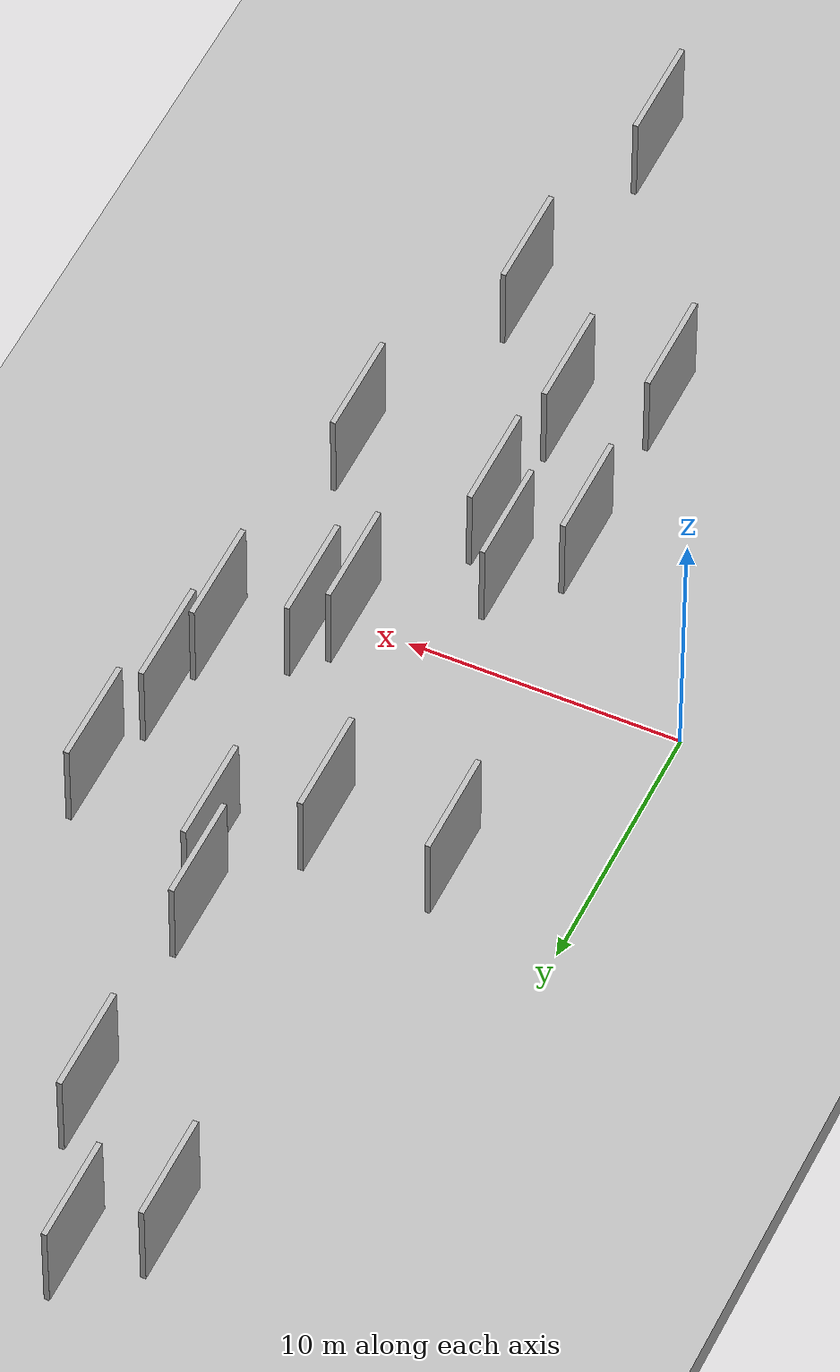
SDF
<?xml version="1.0" encoding="utf-8"?>

<sdf version="1.6">

   <world name="default">

      <gui fullscreen="0">

         <camera name="user_camera">

            <pose>-15 0 4.57585 0 0 0</pose>

            <view_controller>orbit</view_controller>

         </camera>

      </gui>

      <scene>

         <sky>

           <clouds>

             <speed>12</speed>

           </clouds>

         </sky>

         <ambient>0.4 0.4 0.4 1</ambient>

         <background>0.7 0.7 0.7 1</background>

         <shadows>1</shadows>

      </scene>

      <gravity>0 0 -9.8066</gravity>

      <magnetic_field>6e-06 2.3e-05 -4.2e-05</magnetic_field>

      <physics default="0" name="default_physics" type="ode">

         <ode>

            <solver>

               <type>quick</type>

               <iters>10</iters>

               <sor>1.0</sor>

               <use_dynamic_moi_rescaling>0</use_dynamic_moi_rescaling>

            </solver>

            <constraints>

               <cfm>0</cfm>

               <erp>0.2</erp>

               <contact_max_correcting_vel>100</contact_max_correcting_vel>

               <contact_surface_layer>0.001</contact_surface_layer>

            </constraints>

         </ode>

         <max_step_size>0.004</max_step_size>

         <real_time_factor>1</real_time_factor>

         <real_time_update_rate>250</real_time_update_rate>

      </physics>

      <light name="sun" type="directional">

         <cast_shadows>1</cast_shadows>

         <pose>0 0 10 0 0 0</pose>

         <diffuse>0.8 0.8 0.8 1</diffuse>

         <specular>0.2 0.2 0.2 1</specular>

         <attenuation>

            <range>1000</range>

            <constant>0.9</constant>

            <linear>0.01</linear>

            <quadratic>0.001</quadratic>

         </attenuation>

         <direction>-0.5 0.1 -0.9</direction>

      </light>

      <include>

         <name>ground_plane_1</name>

         <uri>model://HANNAS_ground_plane</uri>

         <pose>0 0 0  0 0 0</pose>

      </include>

      <include>

         <name>ground_plane_2</name>

         <uri>model://HANNAS_ground_plane</uri>

         <pose>100 0 0  0 0 0</pose>

      </include>

      <model name="HANNAS_wall_1">

         <static>1</static>

         <pose frame="">9.1122 -10.9513 0.0 0.000000 0.000000 1.570796</pose>

         <link name="link">

            <pose frame="">0 0 2.00 0 0 0</pose>

            <collision name="collision">

               <geometry>

                  <box>

                     <size>4.00 0.2 4.00</size>

                  </box>

               </geometry>

               <max_contacts>10</max_contacts>

               <surface>

                  <contact>

                     <ode/>

                  </contact>

                  <bounce/>

                  <friction>

                     <torsional>

                        <ode/>

                     </torsional>

                     <ode/>

                  </friction>

               </surface>

            </collision>

            <visual name="visual">

               <cast_shadows>0</cast_shadows>

               <geometry>

                  <box>

                     <size>4.00 0.2 4.00</size>

                  </box>

               </geometry>

               <material>

                  <script>

                     <uri>model://HANNAS_wall/materials/scripts</uri>

                     <uri>model://HANNAS_wall/materials/textures</uri>

                     <name>vrc/HANNAS_wall</name>

                  </script>

               </material>

            </visual>

            <self_collide>0</self_collide>

            <enable_wind>0</enable_wind>

            <kinematic>0</kinematic>

         </link>

      </model>

      <model name="HANNAS_wall_2">

         <static>1</static>

         <pose frame="">6.4511 25.8062 0.0 0.000000 0.000000 1.570796</pose>

         <link name="link">

            <pose frame="">0 0 2.00 0 0 0</pose>

            <collision name="collision">

               <geometry>

                  <box>

                     <size>4.00 0.2 4.00</size>

                  </box>

               </geometry>

               <max_contacts>10</max_contacts>

               <surface>

                  <contact>

                     <ode/>

                  </contact>

                  <bounce/>

                  <friction>

                     <torsional>

                        <ode/>

                     </torsional>

                     <ode/>

                  </friction>

               </surface>

            </collision>

            <visual name="visual">

               <cast_shadows>0</cast_shadows>

               <geometry>

                  <box>

                     <size>4.00 0.2 4.00</size>

                  </box>

               </geometry>

               <material>

                  <script>

                     <uri>model://HANNAS_wall/materials/scripts</uri>

                     <uri>model://HANNAS_wall/materials/textures</uri>

                     <name>vrc/HANNAS_wall</name>

                  </script>

               </material>

            </visual>

            <self_collide>0</self_collide>

            <enable_wind>0</enable_wind>

            <kinematic>0</kinematic>

         </link>

      </model>

      <model name="HANNAS_wall_3">

         <static>1</static>

         <pose frame="">6.1203 -5.8459 0.0 0.000000 0.000000 1.570796</pose>

         <link name="link">

            <pose frame="">0 0 2.00 0 0 0</pose>

            <collision name="collision">

               <geometry>

                  <box>

                     <size>4.00 0.2 4.00</size>

                  </box>

               </geometry>

               <max_contacts>10</max_contacts>

               <surface>

                  <contact>

                     <ode/>

                  </contact>

                  <bounce/>

                  <friction>

                     <torsional>

                        <ode/>

                     </torsional>

                     <ode/>

                  </friction>

               </surface>

            </collision>

            <visual name="visual">

               <cast_shadows>0</cast_shadows>

               <geometry>

                  <box>

                     <size>4.00 0.2 4.00</size>

                  </box>

               </geometry>

               <material>

                  <script>

                     <uri>model://HANNAS_wall/materials/scripts</uri>

                     <uri>model://HANNAS_wall/materials/textures</uri>

                     <name>vrc/HANNAS_wall</name>

                  </script>

               </material>

            </visual>

            <self_collide>0</self_collide>

            <enable_wind>0</enable_wind>

            <kinematic>0</kinematic>

         </link>

      </model>

      <model name="HANNAS_wall_4">

         <static>1</static>

         <pose frame="">6.1433 -12.8786 0.0 0.000000 0.000000 1.570796</pose>

         <link name="link">

            <pose frame="">0 0 2.00 0 0 0</pose>

            <collision name="collision">

               <geometry>

                  <box>

                     <size>4.00 0.2 4.00</size>

                  </box>

               </geometry>

               <max_contacts>10</max_contacts>

               <surface>

                  <contact>

                     <ode/>

                  </contact>

                  <bounce/>

                  <friction>

                     <torsional>

                        <ode/>

                     </torsional>

                     <ode/>

                  </friction>

               </surface>

            </collision>

            <visual name="visual">

               <cast_shadows>0</cast_shadows>

               <geometry>

                  <box>

                     <size>4.00 0.2 4.00</size>

                  </box>

               </geometry>

               <material>

                  <script>

                     <uri>model://HANNAS_wall/materials/scripts</uri>

                     <uri>model://HANNAS_wall/materials/textures</uri>

                     <name>vrc/HANNAS_wall</name>

                  </script>

               </material>

            </visual>

            <self_collide>0</self_collide>

            <enable_wind>0</enable_wind>

            <kinematic>0</kinematic>

         </link>

      </model>

      <model name="HANNAS_wall_5">

         <static>1</static>

         <pose frame="">8.8582 27.8732 0.0 0.000000 0.000000 1.570796</pose>

         <link name="link">

            <pose frame="">0 0 2.00 0 0 0</pose>

            <collision name="collision">

               <geometry>

                  <box>

                     <size>4.00 0.2 4.00</size>

                  </box>

               </geometry>

               <max_contacts>10</max_contacts>

               <surface>

                  <contact>

                     <ode/>

                  </contact>

                  <bounce/>

                  <friction>

                     <torsional>

                        <ode/>

                     </torsional>

                     <ode/>

                  </friction>

               </surface>

            </collision>

            <visual name="visual">

               <cast_shadows>0</cast_shadows>

               <geometry>

                  <box>

                     <size>4.00 0.2 4.00</size>

                  </box>

               </geometry>

               <material>

                  <script>

                     <uri>model://HANNAS_wall/materials/scripts</uri>

                     <uri>model://HANNAS_wall/materials/textures</uri>

                     <name>vrc/HANNAS_wall</name>

                  </script>

               </material>

            </visual>

            <self_collide>0</self_collide>

            <enable_wind>0</enable_wind>

            <kinematic>0</kinematic>

         </link>

      </model>

      <model name="HANNAS_wall_6">

         <static>1</static>

         <pose frame="">15.7544 2.8239 0.0 0.000000 0.000000 1.570796</pose>

         <link name="link">

            <pose frame="">0 0 2.00 0 0 0</pose>

            <collision name="collision">

               <geometry>

                  <box>

                     <size>4.00 0.2 4.00</size>

                  </box>

               </geometry>

               <max_contacts>10</max_contacts>

               <surface>

                  <contact>

                     <ode/>

                  </contact>

                  <bounce/>

                  <friction>

                     <torsional>

                        <ode/>

                     </torsional>

                     <ode/>

                  </friction>

               </surface>

            </collision>

            <visual name="visual">

               <cast_shadows>0</cast_shadows>

               <geometry>

                  <box>

                     <size>4.00 0.2 4.00</size>

                  </box>

               </geometry>

               <material>

                  <script>

                     <uri>model://HANNAS_wall/materials/scripts</uri>

                     <uri>model://HANNAS_wall/materials/textures</uri>

                     <name>vrc/HANNAS_wall</name>

                  </script>

               </material>

            </visual>

            <self_collide>0</self_collide>

            <enable_wind>0</enable_wind>

            <kinematic>0</kinematic>

         </link>

      </model>

      <model name="HANNAS_wall_7">

         <static>1</static>

         <pose frame="">11.3487 -23.5679 0.0 0.000000 0.000000 1.570796</pose>

         <link name="link">

            <pose frame="">0 0 2.00 0 0 0</pose>

            <collision name="collision">

               <geometry>

                  <box>

                     <size>4.00 0.2 4.00</size>

                  </box>

               </geometry>

               <max_contacts>10</max_contacts>

               <surface>

                  <contact>

                     <ode/>

                  </contact>

                  <bounce/>

                  <friction>

                     <torsional>

                        <ode/>

                     </torsional>

                     <ode/>

                  </friction>

               </surface>

            </collision>

            <visual name="visual">

               <cast_shadows>0</cast_shadows>

               <geometry>

                  <box>

                     <size>4.00 0.2 4.00</size>

                  </box>

               </geometry>

               <material>

                  <script>

                     <uri>model://HANNAS_wall/materials/scripts</uri>

                     <uri>model://HANNAS_wall/materials/textures</uri>

                     <name>vrc/HANNAS_wall</name>

                  </script>

               </material>

            </visual>

            <self_collide>0</self_collide>

            <enable_wind>0</enable_wind>

            <kinematic>0</kinematic>

         </link>

      </model>

      <model name="HANNAS_wall_8">

         <static>1</static>

         <pose frame="">11.0729 22.2976 0.0 0.000000 0.000000 1.570796</pose>

         <link name="link">

            <pose frame="">0 0 2.00 0 0 0</pose>

            <collision name="collision">

               <geometry>

                  <box>

                     <size>4.00 0.2 4.00</size>

                  </box>

               </geometry>

               <max_contacts>10</max_contacts>

               <surface>

                  <contact>

                     <ode/>

                  </contact>

                  <bounce/>

                  <friction>

                     <torsional>

                        <ode/>

                     </torsional>

                     <ode/>

                  </friction>

               </surface>

            </collision>

            <visual name="visual">

               <cast_shadows>0</cast_shadows>

               <geometry>

                  <box>

                     <size>4.00 0.2 4.00</size>

                  </box>

               </geometry>

               <material>

                  <script>

                     <uri>model://HANNAS_wall/materials/scripts</uri>

                     <uri>model://HANNAS_wall/materials/textures</uri>

                     <name>vrc/HANNAS_wall</name>

                  </script>

               </material>

            </visual>

            <self_collide>0</self_collide>

            <enable_wind>0</enable_wind>

            <kinematic>0</kinematic>

         </link>

      </model>

      <model name="HANNAS_wall_9">

         <static>1</static>

         <pose frame="">9.4863 -5.6898 0.0 0.000000 0.000000 1.570796</pose>

         <link name="link">

            <pose frame="">0 0 2.00 0 0 0</pose>

            <collision name="collision">

               <geometry>

                  <box>

                     <size>4.00 0.2 4.00</size>

                  </box>

               </geometry>

               <max_contacts>10</max_contacts>

               <surface>

                  <contact>

                     <ode/>

                  </contact>

                  <bounce/>

                  <friction>

                     <torsional>

                        <ode/>

                     </torsional>

                     <ode/>

                  </friction>

               </surface>

            </collision>

            <visual name="visual">

               <cast_shadows>0</cast_shadows>

               <geometry>

                  <box>

                     <size>4.00 0.2 4.00</size>

                  </box>

               </geometry>

               <material>

                  <script>

                     <uri>model://HANNAS_wall/materials/scripts</uri>

                     <uri>model://HANNAS_wall/materials/textures</uri>

                     <name>vrc/HANNAS_wall</name>

                  </script>

               </material>

            </visual>

            <self_collide>0</self_collide>

            <enable_wind>0</enable_wind>

            <kinematic>0</kinematic>

         </link>

      </model>

      <model name="HANNAS_wall_10">

         <static>1</static>

         <pose frame="">4.4625 8.5252 0.0 0.000000 0.000000 1.570796</pose>

         <link name="link">

            <pose frame="">0 0 2.00 0 0 0</pose>

            <collision name="collision">

               <geometry>

                  <box>

                     <size>4.00 0.2 4.00</size>

                  </box>

               </geometry>

               <max_contacts>10</max_contacts>

               <surface>

                  <contact>

                     <ode/>

                  </contact>

                  <bounce/>

                  <friction>

                     <torsional>

                        <ode/>

                     </torsional>

                     <ode/>

                  </friction>

               </surface>

            </collision>

            <visual name="visual">

               <cast_shadows>0</cast_shadows>

               <geometry>

                  <box>

                     <size>4.00 0.2 4.00</size>

                  </box>

               </geometry>

               <material>

                  <script>

                     <uri>model://HANNAS_wall/materials/scripts</uri>

                     <uri>model://HANNAS_wall/materials/textures</uri>

                     <name>vrc/HANNAS_wall</name>

                  </script>

               </material>

            </visual>

            <self_collide>0</self_collide>

            <enable_wind>0</enable_wind>

            <kinematic>0</kinematic>

         </link>

      </model>

      <model name="HANNAS_wall_11">

         <static>1</static>

         <pose frame="">16.8838 9.9721 0.0 0.000000 0.000000 1.570796</pose>

         <link name="link">

            <pose frame="">0 0 2.00 0 0 0</pose>

            <collision name="collision">

               <geometry>

                  <box>

                     <size>4.00 0.2 4.00</size>

                  </box>

               </geometry>

               <max_contacts>10</max_contacts>

               <surface>

                  <contact>

                     <ode/>

                  </contact>

                  <bounce/>

                  <friction>

                     <torsional>

                        <ode/>

                     </torsional>

                     <ode/>

                  </friction>

               </surface>

            </collision>

            <visual name="visual">

               <cast_shadows>0</cast_shadows>

               <geometry>

                  <box>

                     <size>4.00 0.2 4.00</size>

                  </box>

               </geometry>

               <material>

                  <script>

                     <uri>model://HANNAS_wall/materials/scripts</uri>

                     <uri>model://HANNAS_wall/materials/textures</uri>

                     <name>vrc/HANNAS_wall</name>

                  </script>

               </material>

            </visual>

            <self_collide>0</self_collide>

            <enable_wind>0</enable_wind>

            <kinematic>0</kinematic>

         </link>

      </model>

      <model name="HANNAS_wall_12">

         <static>1</static>

         <pose frame="">8.9987 8.6689 0.0 0.000000 0.000000 1.570796</pose>

         <link name="link">

            <pose frame="">0 0 2.00 0 0 0</pose>

            <collision name="collision">

               <geometry>

                  <box>

                     <size>4.00 0.2 4.00</size>

                  </box>

               </geometry>

               <max_contacts>10</max_contacts>

               <surface>

                  <contact>

                     <ode/>

                  </contact>

                  <bounce/>

                  <friction>

                     <torsional>

                        <ode/>

                     </torsional>

                     <ode/>

                  </friction>

               </surface>

            </collision>

            <visual name="visual">

               <cast_shadows>0</cast_shadows>

               <geometry>

                  <box>

                     <size>4.00 0.2 4.00</size>

                  </box>

               </geometry>

               <material>

                  <script>

                     <uri>model://HANNAS_wall/materials/scripts</uri>

                     <uri>model://HANNAS_wall/materials/textures</uri>

                     <name>vrc/HANNAS_wall</name>

                  </script>

               </material>

            </visual>

            <self_collide>0</self_collide>

            <enable_wind>0</enable_wind>

            <kinematic>0</kinematic>

         </link>

      </model>

      <model name="HANNAS_wall_13">

         <static>1</static>

         <pose frame="">11.2424 13.7231 0.0 0.000000 0.000000 1.570796</pose>

         <link name="link">

            <pose frame="">0 0 2.00 0 0 0</pose>

            <collision name="collision">

               <geometry>

                  <box>

                     <size>4.00 0.2 4.00</size>

                  </box>

               </geometry>

               <max_contacts>10</max_contacts>

               <surface>

                  <contact>

                     <ode/>

                  </contact>

                  <bounce/>

                  <friction>

                     <torsional>

                        <ode/>

                     </torsional>

                     <ode/>

                  </friction>

               </surface>

            </collision>

            <visual name="visual">

               <cast_shadows>0</cast_shadows>

               <geometry>

                  <box>

                     <size>4.00 0.2 4.00</size>

                  </box>

               </geometry>

               <material>

                  <script>

                     <uri>model://HANNAS_wall/materials/scripts</uri>

                     <uri>model://HANNAS_wall/materials/textures</uri>

                     <name>vrc/HANNAS_wall</name>

                  </script>

               </material>

            </visual>

            <self_collide>0</self_collide>

            <enable_wind>0</enable_wind>

            <kinematic>0</kinematic>

         </link>

      </model>

      <model name="HANNAS_wall_14">

         <static>1</static>

         <pose frame="">11.9722 0.2059 0.0 0.000000 0.000000 1.570796</pose>

         <link name="link">

            <pose frame="">0 0 2.00 0 0 0</pose>

            <collision name="collision">

               <geometry>

                  <box>

                     <size>4.00 0.2 4.00</size>

                  </box>

               </geometry>

               <max_contacts>10</max_contacts>

               <surface>

                  <contact>

                     <ode/>

                  </contact>

                  <bounce/>

                  <friction>

                     <torsional>

                        <ode/>

                     </torsional>

                     <ode/>

                  </friction>

               </surface>

            </collision>

            <visual name="visual">

               <cast_shadows>0</cast_shadows>

               <geometry>

                  <box>

                     <size>4.00 0.2 4.00</size>

                  </box>

               </geometry>

               <material>

                  <script>

                     <uri>model://HANNAS_wall/materials/scripts</uri>

                     <uri>model://HANNAS_wall/materials/textures</uri>

                     <name>vrc/HANNAS_wall</name>

                  </script>

               </material>

            </visual>

            <self_collide>0</self_collide>

            <enable_wind>0</enable_wind>

            <kinematic>0</kinematic>

         </link>

      </model>

      <model name="HANNAS_wall_15">

         <static>1</static>

         <pose frame="">16.1326 5.8992 0.0 0.000000 0.000000 1.570796</pose>

         <link name="link">

            <pose frame="">0 0 2.00 0 0 0</pose>

            <collision name="collision">

               <geometry>

                  <box>

                     <size>4.00 0.2 4.00</size>

                  </box>

               </geometry>

               <max_contacts>10</max_contacts>

               <surface>

                  <contact>

                     <ode/>

                  </contact>

                  <bounce/>

                  <friction>

                     <torsional>

                        <ode/>

                     </torsional>

                     <ode/>

                  </friction>

               </surface>

            </collision>

            <visual name="visual">

               <cast_shadows>0</cast_shadows>

               <geometry>

                  <box>

                     <size>4.00 0.2 4.00</size>

                  </box>

               </geometry>

               <material>

                  <script>

                     <uri>model://HANNAS_wall/materials/scripts</uri>

                     <uri>model://HANNAS_wall/materials/textures</uri>

                     <name>vrc/HANNAS_wall</name>

                  </script>

               </material>

            </visual>

            <self_collide>0</self_collide>

            <enable_wind>0</enable_wind>

            <kinematic>0</kinematic>

         </link>

      </model>

      <model name="HANNAS_wall_16">

         <static>1</static>

         <pose frame="">11.9449 11.3488 0.0 0.000000 0.000000 1.570796</pose>

         <link name="link">

            <pose frame="">0 0 2.00 0 0 0</pose>

            <collision name="collision">

               <geometry>

                  <box>

                     <size>4.00 0.2 4.00</size>

                  </box>

               </geometry>

               <max_contacts>10</max_contacts>

               <surface>

                  <contact>

                     <ode/>

                  </contact>

                  <bounce/>

                  <friction>

                     <torsional>

                        <ode/>

                     </torsional>

                     <ode/>

                  </friction>

               </surface>

            </collision>

            <visual name="visual">

               <cast_shadows>0</cast_shadows>

               <geometry>

                  <box>

                     <size>4.00 0.2 4.00</size>

                  </box>

               </geometry>

               <material>

                  <script>

                     <uri>model://HANNAS_wall/materials/scripts</uri>

                     <uri>model://HANNAS_wall/materials/textures</uri>

                     <name>vrc/HANNAS_wall</name>

                  </script>

               </material>

            </visual>

            <self_collide>0</self_collide>

            <enable_wind>0</enable_wind>

            <kinematic>0</kinematic>

         </link>

      </model>

      <model name="HANNAS_wall_17">

         <static>1</static>

         <pose frame="">15.0533 -6.7389 0.0 0.000000 0.000000 1.570796</pose>

         <link name="link">

            <pose frame="">0 0 2.00 0 0 0</pose>

            <collision name="collision">

               <geometry>

                  <box>

                     <size>4.00 0.2 4.00</size>

                  </box>

               </geometry>

               <max_contacts>10</max_contacts>

               <surface>

                  <contact>

                     <ode/>

                  </contact>

                  <bounce/>

                  <friction>

                     <torsional>

                        <ode/>

                     </torsional>

                     <ode/>

                  </friction>

               </surface>

            </collision>

            <visual name="visual">

               <cast_shadows>0</cast_shadows>

               <geometry>

                  <box>

                     <size>4.00 0.2 4.00</size>

                  </box>

               </geometry>

               <material>

                  <script>

                     <uri>model://HANNAS_wall/materials/scripts</uri>

                     <uri>model://HANNAS_wall/materials/textures</uri>

                     <name>vrc/HANNAS_wall</name>

                  </script>

               </material>

            </visual>

            <self_collide>0</self_collide>

            <enable_wind>0</enable_wind>

            <kinematic>0</kinematic>

         </link>

      </model>

      <model name="HANNAS_wall_18">

         <static>1</static>

         <pose frame="">12.9697 1.3171 0.0 0.000000 0.000000 1.570796</pose>

         <link name="link">

            <pose frame="">0 0 2.00 0 0 0</pose>

            <collision name="collision">

               <geometry>

                  <box>

                     <size>4.00 0.2 4.00</size>

                  </box>

               </geometry>

               <max_contacts>10</max_contacts>

               <surface>

                  <contact>

                     <ode/>

                  </contact>

                  <bounce/>

                  <friction>

                     <torsional>

                        <ode/>

                     </torsional>

                     <ode/>

                  </friction>

               </surface>

            </collision>

            <visual name="visual">

               <cast_shadows>0</cast_shadows>

               <geometry>

                  <box>

                     <size>4.00 0.2 4.00</size>

                  </box>

               </geometry>

               <material>

                  <script>

                     <uri>model://HANNAS_wall/materials/scripts</uri>

                     <uri>model://HANNAS_wall/materials/textures</uri>

                     <name>vrc/HANNAS_wall</name>

                  </script>

               </material>

            </visual>

            <self_collide>0</self_collide>

            <enable_wind>0</enable_wind>

            <kinematic>0</kinematic>

         </link>

      </model>

      <model name="HANNAS_wall_19">

         <static>1</static>

         <pose frame="">8.0889 -3.6582 0.0 0.000000 0.000000 1.570796</pose>

         <link name="link">

            <pose frame="">0 0 2.00 0 0 0</pose>

            <collision name="collision">

               <geometry>

                  <box>

                     <size>4.00 0.2 4.00</size>

                  </box>

               </geometry>

               <max_contacts>10</max_contacts>

               <surface>

                  <contact>

                     <ode/>

                  </contact>

                  <bounce/>

                  <friction>

                     <torsional>

                        <ode/>

                     </torsional>

                     <ode/>

                  </friction>

               </surface>

            </collision>

            <visual name="visual">

               <cast_shadows>0</cast_shadows>

               <geometry>

                  <box>

                     <size>4.00 0.2 4.00</size>

                  </box>

               </geometry>

               <material>

                  <script>

                     <uri>model://HANNAS_wall/materials/scripts</uri>

                     <uri>model://HANNAS_wall/materials/textures</uri>

                     <name>vrc/HANNAS_wall</name>

                  </script>

               </material>

            </visual>

            <self_collide>0</self_collide>

            <enable_wind>0</enable_wind>

            <kinematic>0</kinematic>

         </link>

      </model>

      <model name="HANNAS_wall_20">

         <static>1</static>

         <pose frame="">12.6264 -15.2963 0.0 0.000000 0.000000 1.570796</pose>

         <link name="link">

            <pose frame="">0 0 2.00 0 0 0</pose>

            <collision name="collision">

               <geometry>

                  <box>

                     <size>4.00 0.2 4.00</size>

                  </box>

               </geometry>

               <max_contacts>10</max_contacts>

               <surface>

                  <contact>

                     <ode/>

                  </contact>

                  <bounce/>

                  <friction>

                     <torsional>

                        <ode/>

                     </torsional>

                     <ode/>

                  </friction>

               </surface>

            </collision>

            <visual name="visual">

               <cast_shadows>0</cast_shadows>

               <geometry>

                  <box>

                     <size>4.00 0.2 4.00</size>

                  </box>

               </geometry>

               <material>

                  <script>

                     <uri>model://HANNAS_wall/materials/scripts</uri>

                     <uri>model://HANNAS_wall/materials/textures</uri>

                     <name>vrc/HANNAS_wall</name>

                  </script>

               </material>

            </visual>

            <self_collide>0</self_collide>

            <enable_wind>0</enable_wind>

            <kinematic>0</kinematic>

         </link>

      </model>

   </world>

</sdf>

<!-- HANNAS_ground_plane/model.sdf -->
<sdf version="1.4">
<model name="HANNAS_ground_plane">
  <static>true</static>
    <link name="link">
      <collision name="collision">
        <geometry>
          <plane>
            <normal>0 0 1</normal>
            <size>1000 1000</size>
          </plane>
        </geometry>
        <surface>
          <friction>
            <ode>
              <mu>100</mu>
              <mu2>50</mu2>
            </ode>
          </friction>
        </surface>
      </collision>
      <visual name="visual">
        <cast_shadows>false</cast_shadows>
        <geometry>
          <plane>
            <normal>0 0 1</normal>
            <size>1000 1000</size>
          </plane>
        </geometry>
        <material>
          <script>
            <uri>model://HANNAS_ground_plane/materials/scripts/HANNAS_ground_plane.material</uri>
	    <uri>model://HANNAS_ground_plane/materials/textures</uri>
            <name>HANNASGroundPlane/Image</name>
          </script>
        </material>
      </visual>
    </link>
  </model>
</sdf>
